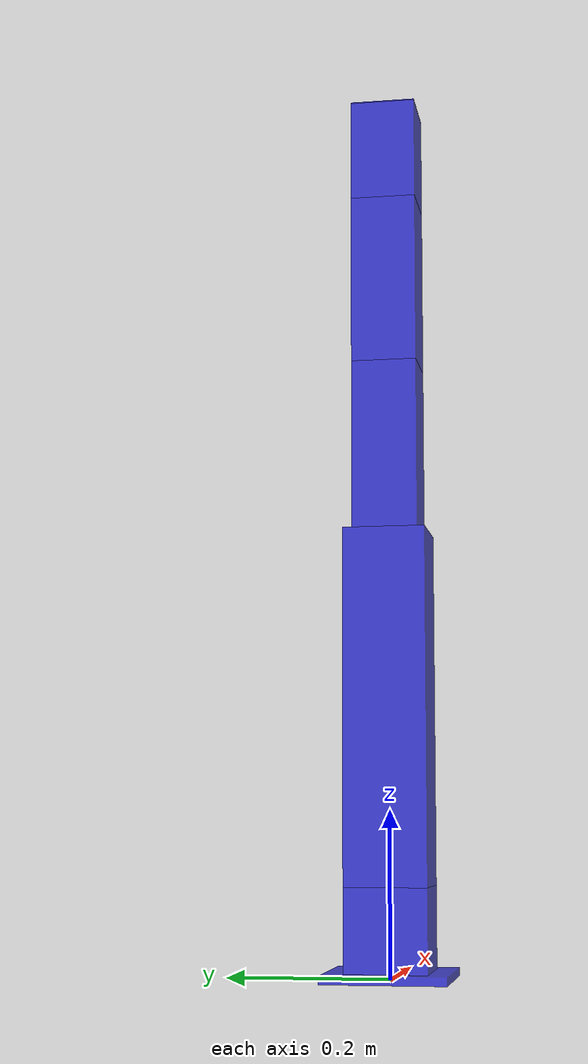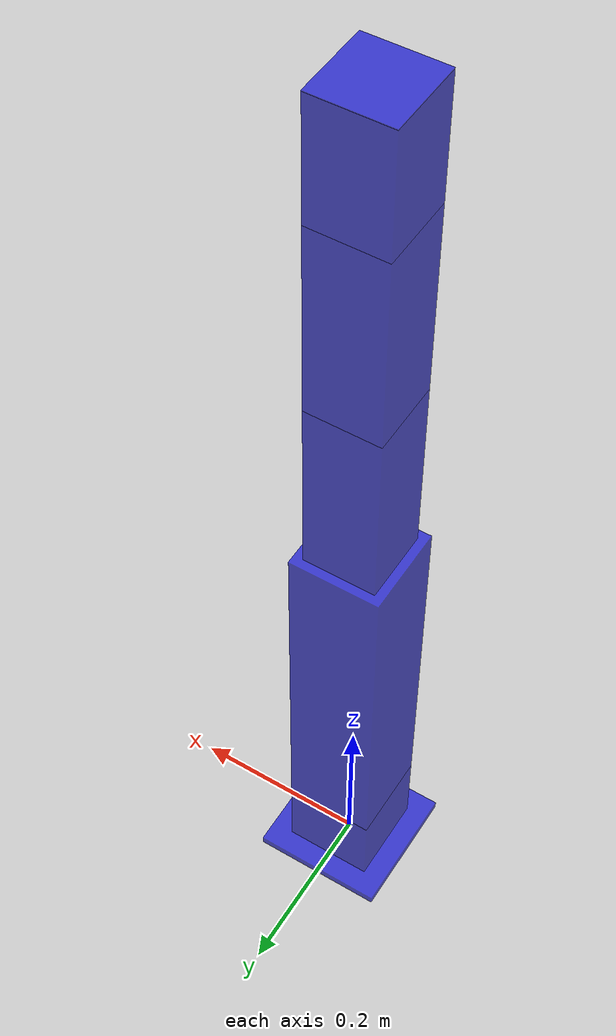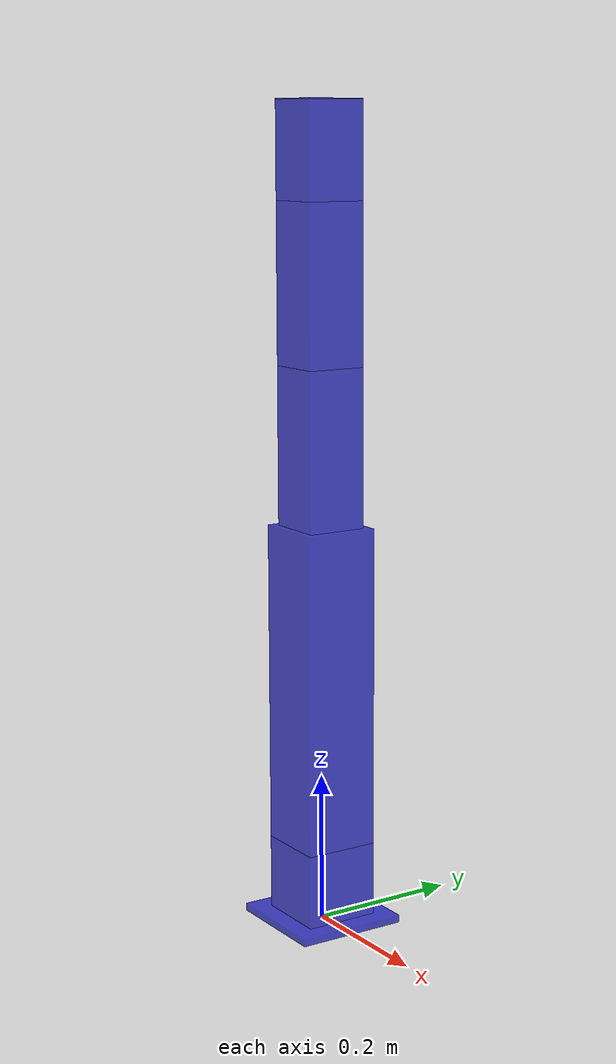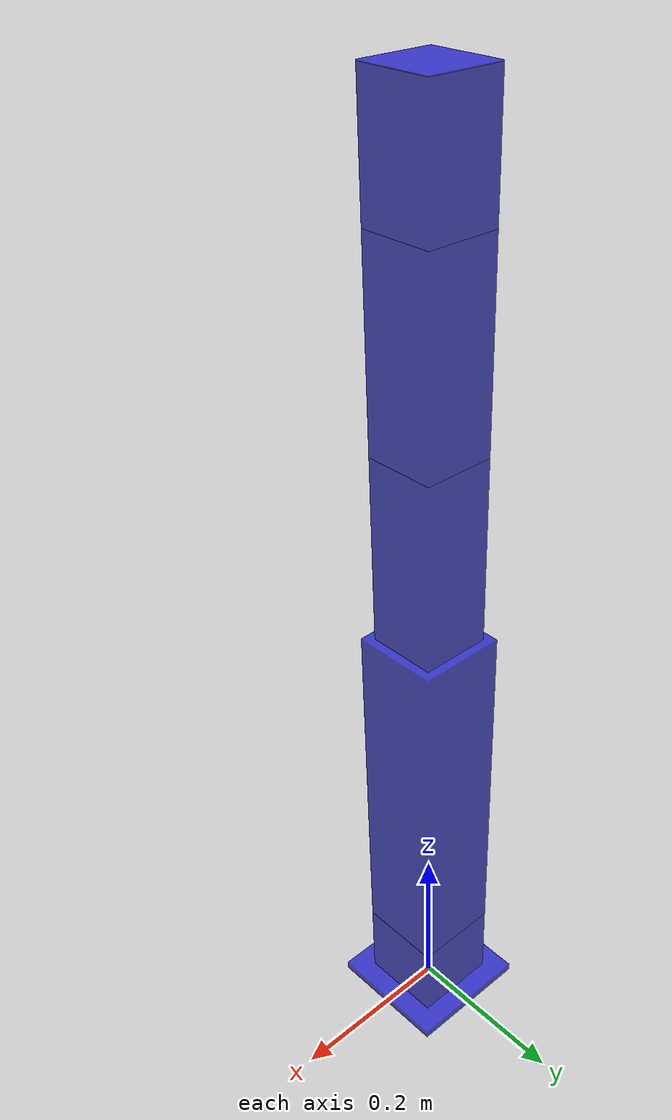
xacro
<?xml version="1.0" encoding="utf-8"?>

<robot name="frost_arm" xmlns:xacro="http://www.ros.org/wiki/xacro">

  <material name="blue">
    <color rgba="0 0 0.8 0.7"/>
  </material>
  <material name="red">
    <color rgba="0.8 0 0 1"/>
  </material>

  <!-- mass is entered in kg data a referenced from mikes robot arm in inventor -->
  <xacro:property name="link_base_mass" value="3.528" />
  <xacro:property name="link_0_mass" value="3.107" />
  <xacro:property name="link_1_mass" value="3.579" />
  <xacro:property name="link_2_mass" value="1.800" />
  <xacro:property name="link_3_mass" value="1.800" />
  <xacro:property name="link_4_mass" value="1.041" />
  <xacro:property name="link_5_mass" value="0.014" />

  <link name="world" />

  <joint name="world_joint" type="fixed">
    <parent link= "world" />
    <child link= "link_base" />
    <origin xyz="0.0 0.0 0.0" rpy="0.0 0.0 0.0" />
  </joint>

  <link name="link_base">
    <visual>
      <geometry>
	      <box size="0.15 0.15 0.01"/>
      </geometry>
      <origin rpy="0 0 0" xyz="0 0 0.005"/>
      <material name="blue"/>
    </visual>
    <collision>
      <geometry>
	      <box size="0.15 0.15 0.01"/>
      </geometry>
      <material name="red"/>
      <origin rpy="0 0 0" xyz="0 0 0.0025"/>
    </collision>
    <inertial>
    <!-- inventor gaves the inertia of a subassambly centerpoint in kg*mm^2-->
    <mass value="${link_base_mass}"/>
    <inertia ixx="12943.301" ixy="920.962"   ixz="2494.072"
                             iyy="34752.194" iyz="-1338.493"
                                             izz="27487.656"/>
    </inertial>
  </link>

  <link name="link_0">
    <visual>
      <geometry>
	      <box size="0.1 0.1 0.1"/>
      </geometry>
      <origin rpy="0 0 0" xyz="0 0 0.05"/>
      <material name="blue"/>
    </visual>
    <collision>
      <geometry>
	      <box size="0.1 0.1 0.1"/>
      </geometry>
      <material name="red"/>
      <origin rpy="0 0 0" xyz="0 0 0.05"/>
    </collision>
    <inertial>
    <!-- inventor gaves the inertia of a subassambly centerpoint in kg*mm^2-->
      <mass value="${link_0_mass}" />
      <inertia ixx="4803.786"  ixy="-0.426"   ixz="260.203"
                                iyy="9729.682" iyz="49.479"
                                                izz="8748.941" />
    </inertial>
  </link>

  <joint name="joint0" type="revolute">
    <axis xyz="0 0 1"/>
    <origin rpy="0 0 0" xyz="0 0 0.01"/>
    <parent link="link_base"/>
    <child link="link_0"/>
    <!-- effort is for revolut joints in Nm for translatoric joints N, velocity is rad/sec
    the source to this fact:https://wiki.ros.org/pr2_controller_manager/safety_limits -->
    <!-- this values for effort and velocity are entert without reference. This are only assumptipons-->
    <!-- specification of the motor-gear 23HS22-2804S-PG15-->
    <!-- the planet gear has a ratio of 15,3:1 multipled with the realtion of the cogwheel of the 54 teeth and 24 teeth
     it multiples up to 15.3 * 54/24 = 34.425. This creates a ration of 34.425:1-->
    <!-- form datasheet permited repeatable peak torque 11.06Nm we use 8.5 Nm and multiply it with 54/24 and get 19.125-->
    <!-- with a ratio of 34.425 and a maximal motor speed of 344,25 n/min, we get a maximal output speed of 1,048 rad/s-->
    <limit effort="19" lower="-3.141592654" upper="3.141592654" velocity="1.048"/>
  </joint>

  <link name="link_1">
    <visual>
      <geometry>
	      <box size="0.1 0.1 0.43"/>
      </geometry>
      <origin rpy="0 0 0" xyz="0 0 0.215"/>
      <material name="blue"/>
    </visual>
    <collision>
      <geometry>
	      <box size="0.1 0.1 0.35"/>
      </geometry>
      <material name="red"/>
      <origin rpy="0 0 0" xyz="0 0 0.215"/>
    </collision>
    <inertial>
    <!-- inventor gaves the inertia of a subassambly centerpoint in kg*mm^2-->
      <mass value="${link_1_mass}" />
      <inertia ixx="90838.481"  ixy="-333.149"  ixz="36.766"
                                iyy="11131.504" iyz="-3760.304"
                                                izz="85698.080" />
    </inertial>
    </link>

  <joint name="joint1" type="revolute">
    <axis xyz="-1 0 0"/>
    <parent link="link_0"/>
    <child link="link_1"/>
    <origin rpy="0 0 0" xyz="0 0 0.1"/>
    <!-- effort is for revolut joints in Nm for translatoric joints N, velocity is rad/sec
    the source to this fact:https://wiki.ros.org/pr2_controller_manager/safety_limits -->
    <!-- effort for the harmonic drive is given in Nm and velocity in rotation per minit-->
    <!--effort specification for the HFUC-25-160-2UH: https://harmonicdrive.de/fileadmin/user_upload/2014_12_ED_1019644_HFUC_2UH.pdf -->
    <!-- specification of the motor ST8918S4508-A-->
    <!-- with a ratio of 160 and a maximal motor speed of 150 n/min, we get a maximal output speed of 0,098 rad/sec.
    Experiments showed even 0.348 rad/sec are also possible-->
    <limit effort="236" lower="-1.570796327" upper="1.570796327" velocity="0.348"/>
  </joint>

  <link name="link_2">
    <visual>
      <geometry>
        <box size="0.08 0.08 0.21"/>
      </geometry>
      <origin rpy="0 0 0" xyz="0 0 0.105"/>
      <material name="blue"/>
    </visual>
    <collision>
      <geometry>
        <box size="0.08 0.08 0.21"/>
      </geometry>
      <origin rpy="0 0 0" xyz="0 0 0.105"/>
      <material name="red"/>
    </collision>
    <inertial>
    <!-- inventor gaves the inertia of a subassambly centerpoint in kg*mm^2-->
      <mass value="${link_2_mass}" />
      <inertia ixx="8246.445" ixy="1.389"     ixz="150.417"
                              iyy="8368.767"  iyz="-25.482"
                                              izz="2020.555" />
    </inertial>
  </link>

  <joint name="joint2" type="revolute">
    <axis xyz="-1 0 0"/>
    <parent link="link_1"/>
    <child link="link_2"/>
    <origin rpy="0 0 0" xyz="0 0 0.43"/>
    <!-- effort is for revolut joints in Nm for translatoric joints N, velocity is rad/sec
    the source to this fact:https://wiki.ros.org/pr2_controller_manager/safety_limits -->
    <!-- effort for the harmonic drive is given in Nm and velocity in rotation per minit-->
    <!--effort specification for the gear CSG-17-120-2UH: https://harmonicdrive.de/fileadmin/user_upload/2014_12_ED_1019642_CSG_2UH.pdf -->
    <!-- specification of the motor ST6018X3008-A-->
    <!-- form datasheet permited repeatable peak torque 176Nm-->
    <!-- with a ratio of 120 and a maximal motor speed of 400 rad/min, we get a maximal output speed of 0,349 rad/sec
      experiments showed even 0,522 rad/sec are also possible-->
    <limit effort="109" lower="-2.268928027593" upper="2.617993877991" velocity="0.522"/>
  </joint>

  <link name="link_3">
    <visual>
      <geometry>
        <box size="0.08 0.08 0.21"/>
      </geometry>
      <origin rpy="0 0 0" xyz="0 0 0.105"/>
      <material name="blue"/>
    </visual>
    <collision>
      <geometry>
        <box size="0.08 0.08 0.09"/>
      </geometry>
      <origin rpy="0 0 0" xyz="0 0 0.105"/>
      <material name="red"/>
    </collision>
    <inertial>
    <!-- inventor gaves the inertia of a subassambly centerpoint in kg*mm^2-->
      <mass value="${link_3_mass}" />
      <inertia ixx="10012.296"  ixy="-30.262"   ixz="628.852"
                                iyy="10358.351" iyz="38.680"
                                                izz="2336.167" />
    </inertial>
  </link>

  <joint name="joint3" type="revolute">
    <axis xyz="0 0 1"/>
    <parent link="link_2"/>
    <child link="link_3"/>
    <origin rpy="0 0 0" xyz="0.0 0.0 0.21"/>
    <!-- effort is for revolut joints in Nm for translatoric joints N
    the source to this fact:https://wiki.ros.org/pr2_controller_manager/safety_limits -->
    <!-- effort for the harmonic drive is given in Nm and velocity in rotation per minit-->
    <!--effort specification for the Gear CSF-14-100-2XH : https://harmonicdrive.de/fileadmin/user_upload/2014_12_ED_1019649_CSF_Mini.pdf -->
    <!-- specification of the motor ST4118X3004-B-->
    <!-- form datasheet permited repeatable peak torque 28Nm-->
    <limit effort="91" lower="-2.705260340591" upper="2.705260340591" velocity="0.942"/>
  </joint>

  <link name="link_4">
    <visual>
      <geometry>
        <box size="0.08 0.08 0.125"/>
      </geometry>
      <origin rpy="0 0 0" xyz="0 0 0.0625"/>
      <material name="blue"/>
    </visual>
    <collision>
      <geometry>
        <box size="0.08 0.08 0.125"/>
      </geometry>
      <origin rpy="0 0 0" xyz="0 0 0.0625"/>
      <material name="red"/>
    </collision>
    <inertial>
    <!-- inventor gaves the inertia of a subassambly centerpoint in kg*mm^2-->
      <mass value="${link_4_mass}" />
      <inertia ixx="2740.748"  ixy="813.029"   ixz="37.382"
                                iyy="3142.024" iyz="-16.318"
                                                izz="4881.617" />
    </inertial>
  </link>

  <joint name="joint4" type="revolute">
    <axis xyz="-1 0 0"/>
    <parent link="link_3"/>
    <child link="link_4"/>
    <origin rpy="0 0 0" xyz="0 0.0 0.21"/>
    <!-- effort is for revolut joints in Nm for translatoric joints N
    the source to this fact:https://wiki.ros.org/pr2_controller_manager/safety_limits -->
    <!-- effort for the harmonic drive is given in Nm and velocity in rotation per minit -->
    <!--effort specification for the Gear CSG-17-120-2UH: https://harmonicdrive.de/fileadmin/user_upload/2014_12_ED_1019642_CSG_2UH.pdf -->
    <!-- specification of the motor ST6018X3008-A-->
    <!-- form datasheet permited repeatable peak torque 70Nm-->
    <!-- with a ratio of 120 and a maximal motor speed of 400 rad/min, we get a maximal output speed of 0,349 rad/sec
      experimental we showed even 1,256 rad/sec is possible-->
    <limit effort="109" lower="-1.570796326795" upper="1.570796326795" velocity="1.256"/>
  </joint>

  <link name="link_5">
    <visual>
      <geometry>
        <box size="0.08 0.08 0.001"/>
      </geometry>
      <origin rpy="0 0 0" xyz="0 0 0.0006"/>
      <material name="blue"/>
    </visual>
    <collision>
      <geometry>
        <box size="0.08 0.08 0"/>
      </geometry>
      <origin rpy="0 0 0" xyz="0 0 0.0006"/>
      <material name="red"/>
    </collision>
    <inertial>
    <!-- inventor gaves the inertia of a subassambly centerpoint in kg*mm^2-->
      <mass value="${link_5_mass}" />
      <inertia ixx="3.174"  ixy="6.256" ixz="-0.000"
                            iyy="6.256" iyz="0.000"
                                        izz="3.174" />
    </inertial>
  </link>

  <joint name="joint5" type="revolute">
    <axis xyz="0 0 1"/>
    <parent link="link_4"/>
    <child link="link_5"/>
    <origin rpy="0 0 0" xyz="0 0 0.125"/>
    <!-- effort is for revolut joints in Nm for translatoric joints N
    the source to this fact:https://wiki.ros.org/pr2_controller_manager/safety_limits -->
    <!-- this values for effort and velocity are entert without reference. This are only assumptipons-->
    <limit effort="100" lower="-3.14159265359" upper="3.14159265359" velocity="1"/>
  </joint>
</robot>
